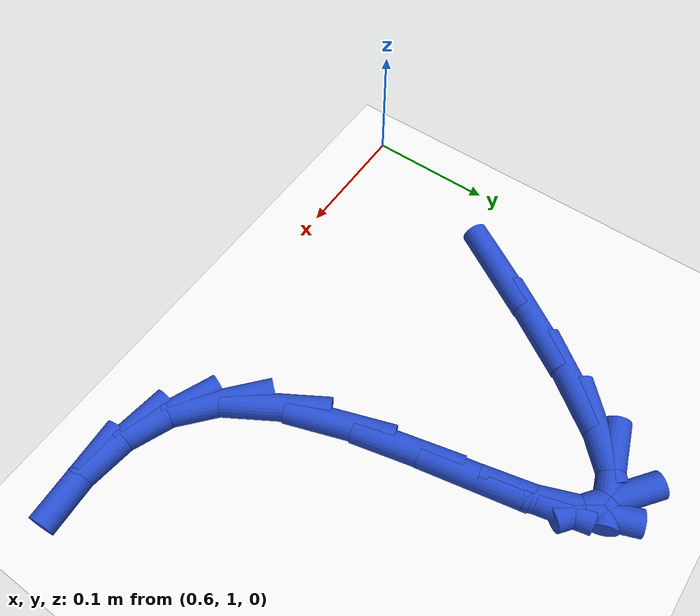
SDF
<sdf version="1.6">
 <world name="default">
  <model name="ground_plane">
   <static>1</static>
   <link name="link">
    <collision name="collision">
     <geometry><plane><normal>0 0 1</normal><size>100 100</size></plane></geometry>
     <surface><friction><ode><mu>100</mu><mu2>50</mu2></ode></friction></surface>
    </collision>
    <visual name="visual">
     <cast_shadows>0</cast_shadows>
     <geometry><plane><normal>0 0 1</normal><size>100 100</size></plane></geometry>
     <material>
      <script><uri>file://media/materials/scripts/gazebo.material</uri><name>Gazebo/WhiteGlow</name></script>
     </material>
    </visual>
   </link>
  </model>
  <model name="line">
   <link name="link_31">
    <pose>0.6639231072688065 1.1535960930776197 0.01 0 1.57 1.0365891636039977</pose>
    <collision name="collision">
     <geometry><cylinder><radius>0.01</radius><length>0.08</length></cylinder></geometry>
    </collision>
    <visual name="visual">
     <material>
      <script><name>Gazebo/Blue</name><uri>file://media/materials/scripts/gazebo.material</uri></script>
     </material>
     <geometry><cylinder><radius>0.01</radius><length>0.08</length></cylinder></geometry>
    </visual>
   </link>
   <link name="link_32">
    <pose>0.6929028070472677 1.2025828368204818 0.01 0 1.57 1.0041290565451264</pose>
    <collision name="collision">
     <geometry><cylinder><radius>0.01</radius><length>0.08</length></cylinder></geometry>
    </collision>
    <visual name="visual">
     <material>
      <script><name>Gazebo/Blue</name><uri>file://media/materials/scripts/gazebo.material</uri></script>
     </material>
     <geometry><cylinder><radius>0.01</radius><length>0.08</length></cylinder></geometry>
    </visual>
   </link>
   <link name="link_33">
    <pose>0.7200892907751588 1.2453102975709789 0.01 0 1.57 0.932513668026764</pose>
    <collision name="collision">
     <geometry><cylinder><radius>0.01</radius><length>0.08</length></cylinder></geometry>
    </collision>
    <visual name="visual">
     <material>
      <script><name>Gazebo/Blue</name><uri>file://media/materials/scripts/gazebo.material</uri></script>
     </material>
     <geometry><cylinder><radius>0.01</radius><length>0.08</length></cylinder></geometry>
    </visual>
   </link>
   <link name="link_34">
    <pose>0.7449682079725823 1.2788453545421015 0.01 0 1.57 0.7705034878281544</pose>
    <collision name="collision">
     <geometry><cylinder><radius>0.01</radius><length>0.08</length></cylinder></geometry>
    </collision>
    <visual name="visual">
     <material>
      <script><name>Gazebo/Blue</name><uri>file://media/materials/scripts/gazebo.material</uri></script>
     </material>
     <geometry><cylinder><radius>0.01</radius><length>0.08</length></cylinder></geometry>
    </visual>
   </link>
   <link name="link_35">
    <pose>0.7670252081596396 1.3002548869468376 0.01 0 1.57 0.3270602481532942</pose>
    <collision name="collision">
     <geometry><cylinder><radius>0.01</radius><length>0.08</length></cylinder></geometry>
    </collision>
    <visual name="visual">
     <material>
      <script><name>Gazebo/Blue</name><uri>file://media/materials/scripts/gazebo.material</uri></script>
     </material>
     <geometry><cylinder><radius>0.01</radius><length>0.08</length></cylinder></geometry>
    </visual>
   </link>
   <link name="link_36">
    <pose>0.7857459408564329 1.306605773998178 0.01 0 1.57 -0.6607142820973615</pose>
    <collision name="collision">
     <geometry><cylinder><radius>0.01</radius><length>0.08</length></cylinder></geometry>
    </collision>
    <visual name="visual">
     <material>
      <script><name>Gazebo/Blue</name><uri>file://media/materials/scripts/gazebo.material</uri></script>
     </material>
     <geometry><cylinder><radius>0.01</radius><length>0.08</length></cylinder></geometry>
    </visual>
   </link>
   <link name="link_37">
    <pose>0.8006348275459527 1.2950333857793639 0.01 0 1.57 -1.1945812247315057</pose>
    <collision name="collision">
     <geometry><cylinder><radius>0.01</radius><length>0.08</length></cylinder></geometry>
    </collision>
    <visual name="visual">
     <material>
      <script><name>Gazebo/Blue</name><uri>file://media/materials/scripts/gazebo.material</uri></script>
     </material>
     <geometry><cylinder><radius>0.01</radius><length>0.08</length></cylinder></geometry>
    </visual>
   </link>
   <link name="link_38">
    <pose>0.8121063976511482 1.26599368730553 0.01 0 1.57 -1.3386323165650522</pose>
    <collision name="collision">
     <geometry><cylinder><radius>0.01</radius><length>0.08</length></cylinder></geometry>
    </collision>
    <visual name="visual">
     <material>
      <script><name>Gazebo/Blue</name><uri>file://media/materials/scripts/gazebo.material</uri></script>
     </material>
     <geometry><cylinder><radius>0.01</radius><length>0.08</length></cylinder></geometry>
    </visual>
   </link>
   <link name="link_39">
    <pose>0.8218738528034922 1.2246809434840373 0.01 0 1.57 -1.3679916434915367</pose>
    <collision name="collision">
     <geometry><cylinder><radius>0.01</radius><length>0.08</length></cylinder></geometry>
    </collision>
    <visual name="visual">
     <material>
      <script><name>Gazebo/Blue</name><uri>file://media/materials/scripts/gazebo.material</uri></script>
     </material>
     <geometry><cylinder><radius>0.01</radius><length>0.08</length></cylinder></geometry>
    </visual>
   </link>
   <link name="link_40">
    <pose>0.8317499719913123 1.176652734442328 0.01 0 1.57 -1.3353878458937123</pose>
    <collision name="collision">
     <geometry><cylinder><radius>0.01</radius><length>0.08</length></cylinder></geometry>
    </collision>
    <visual name="visual">
     <material>
      <script><name>Gazebo/Blue</name><uri>file://media/materials/scripts/gazebo.material</uri></script>
     </material>
     <geometry><cylinder><radius>0.01</radius><length>0.08</length></cylinder></geometry>
    </visual>
   </link>
   <link name="link_41">
    <pose>0.8435475342029368 1.127466640307844 0.01 0 1.57 -1.2369778965501237</pose>
    <collision name="collision">
     <geometry><cylinder><radius>0.01</radius><length>0.08</length></cylinder></geometry>
    </collision>
    <visual name="visual">
     <material>
      <script><name>Gazebo/Blue</name><uri>file://media/materials/scripts/gazebo.material</uri></script>
     </material>
     <geometry><cylinder><radius>0.01</radius><length>0.08</length></cylinder></geometry>
    </visual>
   </link>
   <link name="link_42">
    <pose>0.859079318426693 1.0826802412080279 0.01 0 1.57 -1.031243513745961</pose>
    <collision name="collision">
     <geometry><cylinder><radius>0.01</radius><length>0.08</length></cylinder></geometry>
    </collision>
    <visual name="visual">
     <material>
      <script><name>Gazebo/Blue</name><uri>file://media/materials/scripts/gazebo.material</uri></script>
     </material>
     <geometry><cylinder><radius>0.01</radius><length>0.08</length></cylinder></geometry>
    </visual>
   </link>
   <link name="link_43">
    <pose>0.8800751064530079 1.0476184183092851 0.01 0 1.57 -0.7217724448354997</pose>
    <collision name="collision">
     <geometry><cylinder><radius>0.01</radius><length>0.08</length></cylinder></geometry>
    </collision>
    <visual name="visual">
     <material>
      <script><name>Gazebo/Blue</name><uri>file://media/materials/scripts/gazebo.material</uri></script>
     </material>
     <geometry><cylinder><radius>0.01</radius><length>0.08</length></cylinder></geometry>
    </visual>
   </link>
   <link name="link_44">
    <pose>0.9069616221741095 1.0239526737875424 0.01 0 1.57 -0.3973663996892161</pose>
    <collision name="collision">
     <geometry><cylinder><radius>0.01</radius><length>0.08</length></cylinder></geometry>
    </collision>
    <visual name="visual">
     <material>
      <script><name>Gazebo/Blue</name><uri>file://media/materials/scripts/gazebo.material</uri></script>
     </material>
     <geometry><cylinder><radius>0.01</radius><length>0.08</length></cylinder></geometry>
    </visual>
   </link>
   <link name="link_45">
    <pose>0.939130255100037 1.0104517463381182 0.01 0 1.57 -0.12557861818949256</pose>
    <collision name="collision">
     <geometry><cylinder><radius>0.01</radius><length>0.08</length></cylinder></geometry>
    </collision>
    <visual name="visual">
     <material>
      <script><name>Gazebo/Blue</name><uri>file://media/materials/scripts/gazebo.material</uri></script>
     </material>
     <geometry><cylinder><radius>0.01</radius><length>0.08</length></cylinder></geometry>
    </visual>
   </link>
   <link name="link_46">
    <pose>0.9759438316589492 1.0058042924409583 0.01 0 1.57 0.07079234633715945</pose>
    <collision name="collision">
     <geometry><cylinder><radius>0.01</radius><length>0.08</length></cylinder></geometry>
    </collision>
    <visual name="visual">
     <material>
      <script><name>Gazebo/Blue</name><uri>file://media/materials/scripts/gazebo.material</uri></script>
     </material>
     <geometry><cylinder><radius>0.01</radius><length>0.08</length></cylinder></geometry>
    </visual>
   </link>
  </model>
 </world>
</sdf>
